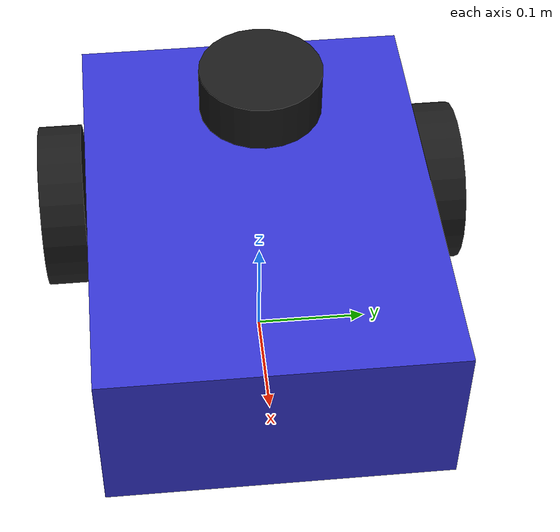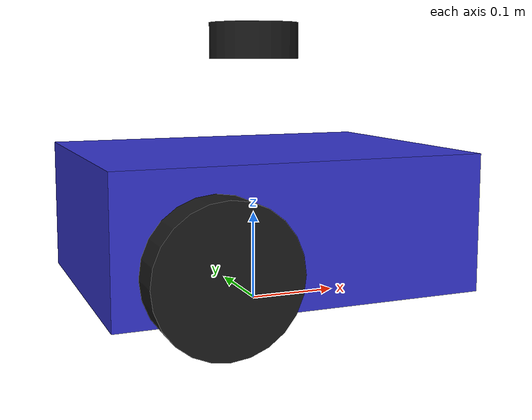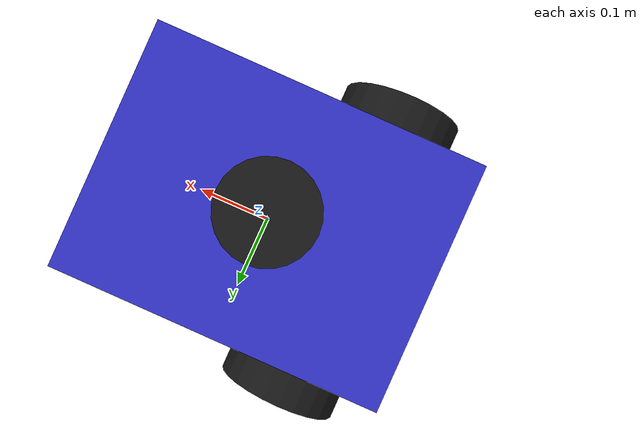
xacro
<?xml version="1.0"?>
<robot xmlns:xacro="http://www.ros.org/wiki/xacro" name="llm_robot">

  <!-- Robot Properties                               -->
  <xacro:property name="base_length" value="0.40" />
  <xacro:property name="base_width"  value="0.30" />
  <xacro:property name="base_height" value="0.15" />
  <xacro:property name="ground_clearance" value="0.025" />
  <xacro:property name="base_mass"   value="5.0" />

  <xacro:property name="wheel_radius" value="0.075" />
  <xacro:property name="wheel_width"  value="0.04" />
  <xacro:property name="wheel_mass"   value="1.0" />
  <!-- Move the wheels slightly towards the back of the chassis -->
  <xacro:property name="wheel_x_offset" value="-0.10" />
  <!-- Place wheels exactly outside the chassis on the Y axis -->
  <!-- 0.15 (half chassis) + 0.02 (half wheel) + 0.005 (clearance) = 0.175 -->
  <xacro:property name="wheel_y_offset" value="0.175" />

  <!-- Caster Wheel Properties -->
  <xacro:property name="caster_radius" value="0.04" />
  <xacro:property name="caster_mass"   value="0.5" />
  <xacro:property name="caster_x_offset" value="0.16" />
  <xacro:property name="caster_z_offset" value="-0.035" />

  <!-- Macros                                         -->
  <xacro:macro name="box_inertia" params="m l w h">
    <inertial>
      <mass value="${m}"/>
      <inertia ixx="${(m/12) * (w*w + h*h)}" ixy="0.0" ixz="0.0"
               iyy="${(m/12) * (l*l + h*h)}" iyz="0.0"
               izz="${(m/12) * (l*l + w*w)}"/>
    </inertial>
  </xacro:macro>

  <xacro:macro name="cylinder_inertia" params="m r h *origin">
    <inertial>
      <xacro:insert_block name="origin"/>
      <mass value="${m}"/>
      <inertia ixx="${(m/12) * (3*r*r + h*h)}" ixy="0.0" ixz="0.0"
               iyy="${(m/12) * (3*r*r + h*h)}" iyz="0.0"
               izz="${(m/2) * (r*r)}"/>
    </inertial>
  </xacro:macro>

  <xacro:macro name="sphere_inertia" params="m r">
    <inertial>
      <mass value="${m}"/>
      <inertia ixx="${(2/5) * m * r * r}" ixy="0.0" ixz="0.0"
               iyy="${(2/5) * m * r * r}" iyz="0.0"
               izz="${(2/5) * m * r * r}"/>
    </inertial>
  </xacro:macro>

  <!-- Links & Joints                                 -->

  <!-- Base Footprint: Massless reference link on the ground -->
  <link name="base_footprint"/>

  <!-- Joint connecting footprint to base_link -->
  <joint name="base_footprint_joint" type="fixed">
    <parent link="base_footprint"/>
    <child link="base_link"/>
    <!-- The origin of base_link is at its volumetric center, so we raise it by half its height -->
    <origin xyz="0 0 ${(base_height / 2) + ground_clearance}" rpy="0 0 0"/>
  </joint>

  <!-- Base Link -->
  <link name="base_link">
    <!-- Visual Geometry -->
    <visual>
      <origin xyz="0 0 0" rpy="0 0 0"/>
      <geometry>
        <box size="${base_length} ${base_width} ${base_height}"/>
      </geometry>
      <material name="blue">
        <color rgba="0.2 0.2 0.8 1.0"/>
      </material>
    </visual>

    <!-- Collision Geometry -->
    <collision>
      <origin xyz="0 0 0" rpy="0 0 0"/>
      <geometry>
        <box size="${base_length} ${base_width} ${base_height}"/>
      </geometry>
    </collision>

    <!-- Inertial Properties -->
    <xacro:box_inertia m="${base_mass}" l="${base_length}" w="${base_width}" h="${base_height}"/>
  </link>

  <!-- Drive Wheel Macro -->
  <xacro:macro name="drive_wheel" params="prefix y_reflect">
    <link name="${prefix}_wheel">
      <visual>
        <!-- Rotate the cylinder by -90 degrees on X to align it with the Y axis -->
        <origin xyz="0 0 0" rpy="-1.570796 0 0"/>
        <geometry>
          <cylinder radius="${wheel_radius}" length="${wheel_width}"/>
        </geometry>
        <material name="black">
          <color rgba="0.1 0.1 0.1 1.0"/>
        </material>
      </visual>

      <collision>
        <origin xyz="0 0 0" rpy="-1.570796 0 0"/>
        <geometry>
          <cylinder radius="${wheel_radius}" length="${wheel_width}"/>
        </geometry>
      </collision>

      <!-- Rotate inertial frame identically to keep standard cylinder inertia logic valid -->
      <xacro:cylinder_inertia m="${wheel_mass}" r="${wheel_radius}" h="${wheel_width}">
        <origin xyz="0 0 0" rpy="-1.570796 0 0"/>
      </xacro:cylinder_inertia>
    </link>

    <joint name="${prefix}_wheel_joint" type="continuous">
      <parent link="base_link"/>
      <child link="${prefix}_wheel"/>
      <!-- Wheel joint Z=0 relative to base_link (which is +0.075m above ground).
           Radius is 0.075m, making the bottom perfectly touch the ground! -->
      <origin xyz="${wheel_x_offset} ${y_reflect * wheel_y_offset} ${-ground_clearance}" rpy="0 0 0"/>
      <!-- Rotation axis is purely along the Y axis -->
      <axis xyz="0 1 0"/>
    </joint>
  </xacro:macro>

  <!-- Instantiate Left and Right Wheels -->
  <xacro:drive_wheel prefix="left" y_reflect="1" />
  <xacro:drive_wheel prefix="right" y_reflect="-1" />

  <!-- Caster Wheel -->
  <link name="caster_wheel">
    <visual>
      <origin xyz="0 0 0" rpy="0 0 0"/>
      <geometry>
        <sphere radius="${caster_radius}"/>
      </geometry>
      <material name="grey">
        <color rgba="0.5 0.5 0.5 1.0"/>
      </material>
    </visual>
    <collision>
      <origin xyz="0 0 0" rpy="0 0 0"/>
      <geometry>
        <sphere radius="${caster_radius}"/>
      </geometry>
    </collision>
    <xacro:sphere_inertia m="${caster_mass}" r="${caster_radius}"/>
  </link>

  <!-- Caster Joint -->
  <joint name="caster_joint" type="fixed">
    <parent link="base_link"/>
    <child link="caster_wheel"/>
    <origin xyz="${caster_x_offset} 0.0 ${caster_z_offset - ground_clearance}" rpy="0 0 0"/>
  </joint>

  <!-- LiDAR Sensor                                   -->
  <link name="lidar_link">
    <visual>
      <origin xyz="0 0 0" rpy="0 0 0"/>
      <geometry>
        <cylinder radius="0.05" length="0.04"/>
      </geometry>
      <material name="black"/>
    </visual>
    <collision>
      <origin xyz="0 0 0" rpy="0 0 0"/>
      <geometry>
        <cylinder radius="0.05" length="0.04"/>
      </geometry>
    </collision>
    <inertial>
      <mass value="0.1"/>
      <origin xyz="0 0 0" rpy="0 0 0"/>
      <inertia ixx="0.0001" ixy="0" ixz="0" iyy="0.0001" iyz="0" izz="0.0001"/>
    </inertial>
  </link>

  <joint name="lidar_joint" type="fixed">
    <parent link="base_link"/>
    <child link="lidar_link"/>
    <origin xyz="0 0 0.195" rpy="0 0 0"/>
  </joint>

  <gazebo reference="lidar_link">
    <material>
      <ambient>0.0 0.0 0.0 1.0</ambient>
      <diffuse>0.0 0.0 0.0 1.0</diffuse>
    </material>
    <sensor name="lidar" type="gpu_lidar">
      <always_on>true</always_on>
      <visualize>true</visualize>
      <update_rate>10</update_rate>
      <topic>scan</topic>
      <gz_frame_id>lidar_link</gz_frame_id>
      <lidar>
        <scan>
          <horizontal>
            <samples>360</samples>
            <resolution>1.0</resolution>
            <min_angle>-3.14159</min_angle>
            <max_angle>3.14159</max_angle>
          </horizontal>
        </scan>
        <range>
          <min>0.12</min>
          <max>8.0</max>
          <resolution>0.01</resolution>
        </range>
        <noise>
          <type>gaussian</type>
          <mean>0.0</mean>
          <stddev>0.01</stddev>
        </noise>
      </lidar>
    </sensor>
  </gazebo>

  <gazebo>
    <plugin filename="gz-sim-sensors-system" name="gz::sim::systems::Sensors">
      <render_engine>ogre2</render_engine>
    </plugin>
  </gazebo>

  <!-- Gazebo Materials                               -->
  <gazebo reference="base_link">
    <material>
      <ambient>0.2 0.2 0.8 1.0</ambient>
      <diffuse>0.2 0.2 0.8 1.0</diffuse>
    </material>
  </gazebo>

  <gazebo reference="left_wheel">
    <material>
      <ambient>0.1 0.1 0.1 1.0</ambient>
      <diffuse>0.1 0.1 0.1 1.0</diffuse>
    </material>
  </gazebo>

  <gazebo reference="right_wheel">
    <material>
      <ambient>0.1 0.1 0.1 1.0</ambient>
      <diffuse>0.1 0.1 0.1 1.0</diffuse>
    </material>
  </gazebo>

  <gazebo reference="caster_wheel">
    <material>
      <ambient>0.5 0.5 0.5 1.0</ambient>
      <diffuse>0.5 0.5 0.5 1.0</diffuse>
    </material>
    <mu1>0.0</mu1>
    <mu2>0.0</mu2>
  </gazebo>

  <!-- ROS 2 Control (Hardware Interface)             -->
  <ros2_control name="GazeboSimSystem" type="system">
    <hardware>
      <plugin>gz_ros2_control/GazeboSimSystem</plugin>
    </hardware>
    <joint name="left_wheel_joint">
      <command_interface name="velocity"/>
      <state_interface name="position"/>
      <state_interface name="velocity"/>
    </joint>
    <joint name="right_wheel_joint">
      <command_interface name="velocity"/>
      <state_interface name="position"/>
      <state_interface name="velocity"/>
    </joint>
  </ros2_control>

  <!-- Gazebo Control Plugin -->
  <gazebo>
    <plugin filename="gz_ros2_control-system" name="gz_ros2_control::GazeboSimROS2ControlPlugin">
      <parameters>$(find llm_robot_gazebo)/config/controllers.yaml</parameters>
    </plugin>
  </gazebo>

</robot>
